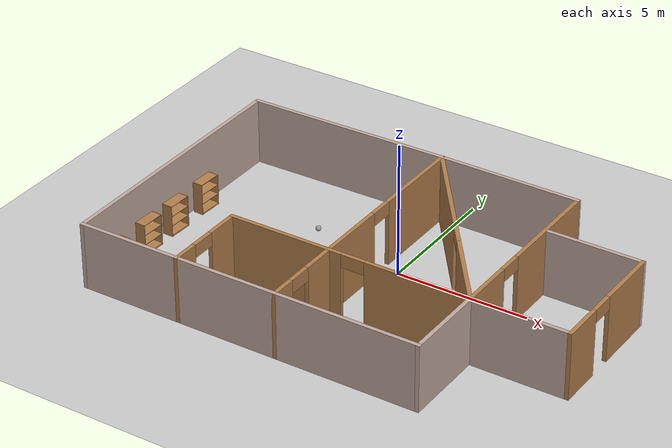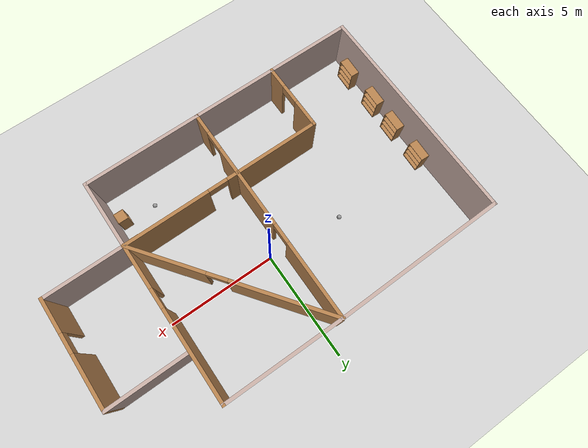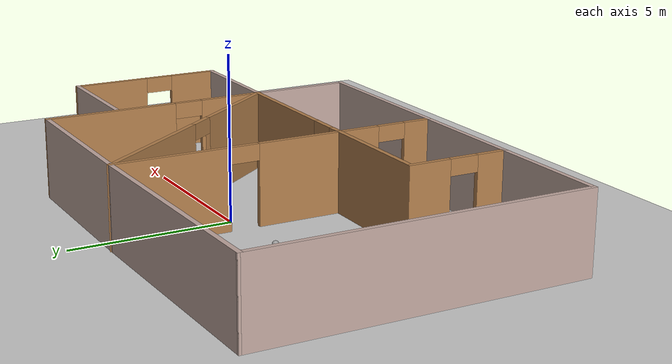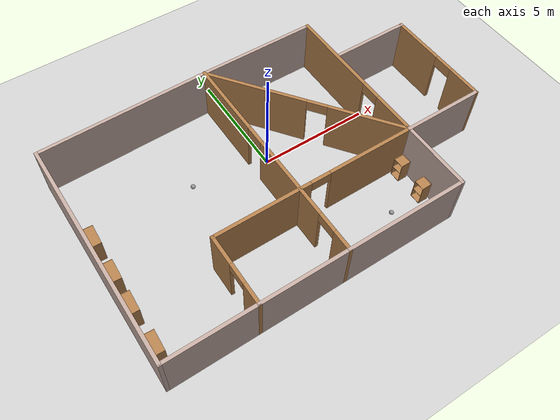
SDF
<sdf version="1.6">
 <world name="default">
  <light name="sun" type="directional">
   <pose>0 0 10 0 -0 0</pose>
   <diffuse>0.8 0.8 0.8 1</diffuse>
   <specular>0.2 0.2 0.2 1</specular>
   <attenuation>
    <range>1000</range>
    <constant>0.9</constant>
    <linear>0.01</linear>
    <quadratic>0.001</quadratic>
   </attenuation>
   <direction>-0.5 0.1 -0.9</direction>
  </light>
  <model name="ground_plane">
   <static>1</static>
   <link name="link">
    <collision name="collision">
     <geometry><plane><normal>0 0 1</normal><size>100 100</size></plane></geometry>
     <surface>
      <contact><collide_bitmask>65535</collide_bitmask></contact>
      <friction><ode><mu>100</mu><mu2>50</mu2></ode></friction>
     </surface>
    </collision>
    <visual name="visual">
     <cast_shadows>0</cast_shadows>
     <geometry><plane><normal>0 0 1</normal><size>100 100</size></plane></geometry>
     <material>
      <script><uri>file://media/materials/scripts/gazebo.material</uri><name>Gazebo/Grey</name></script>
     </material>
    </visual>
   </link>
  </model>
  <gravity>0 0 -9.8</gravity>
  <magnetic_field>6e-06 2.3e-05 -4.2e-05</magnetic_field>
  <atmosphere type="adiabatic"/>
  <physics name="default_physics" default="0" type="ode">
   <max_step_size>0.001</max_step_size>
   <real_time_factor>1</real_time_factor>
   <real_time_update_rate>1000</real_time_update_rate>
  </physics>
  <scene><ambient>0.4 0.4 0.4 1</ambient><background>0.7 0.7 0.7 1</background><shadows>1</shadows></scene>
  <spherical_coordinates>
   <surface_model>EARTH_WGS84</surface_model>
   <latitude_deg>0</latitude_deg>
   <longitude_deg>0</longitude_deg>
   <elevation>0</elevation>
   <heading_deg>0</heading_deg>
  </spherical_coordinates>
  <model name="Project2Buidling">
   <pose>-0.03368 -1.22093 0 0 -0 0</pose>
   <link name="Wall_0">
    <collision name="Wall_0_Collision">
     <geometry><box><size>10.25 0.15 2.5</size></box></geometry>
     <pose>0 0 1.25 0 -0 0</pose>
    </collision>
    <visual name="Wall_0_Visual">
     <pose>0 0 1.25 0 -0 0</pose>
     <geometry><box><size>10.25 0.15 2.5</size></box></geometry>
     <material>
      <script><uri>file://media/materials/scripts/gazebo.material</uri><name>Gazebo/Grey</name></script>
      <ambient>0.760784 0.662745 0.627451 1</ambient>
     </material>
     <meta><layer>0</layer></meta>
    </visual>
    <pose>-8.32441 -0.076505 0 0 0 -1.5708</pose>
   </link>
   <link name="Wall_1">
    <collision name="Wall_1_Collision">
     <geometry><box><size>4 0.15 2.5</size></box></geometry>
     <pose>0 0 1.25 0 -0 0</pose>
    </collision>
    <visual name="Wall_1_Visual">
     <pose>0 0 1.25 0 -0 0</pose>
     <geometry><box><size>4 0.15 2.5</size></box></geometry>
     <material>
      <script><uri>file://media/materials/scripts/gazebo.material</uri><name>Gazebo/Grey</name></script>
      <ambient>0.760784 0.662745 0.627451 1</ambient>
     </material>
     <meta><layer>0</layer></meta>
    </visual>
    <pose>-6.39941 -5.1265 0 0 -0 0</pose>
   </link>
   <link name="Wall_10">
    <pose>-0.624406 1.535 0 0 -0 1.5708</pose>
    <visual name="Wall_10_Visual_0">
     <pose>-2.26805 0 1.25 0 -0 0</pose>
     <geometry><box><size>2.7369 0.15 2.5</size></box></geometry>
     <material>
      <script><uri>file://media/materials/scripts/gazebo.material</uri><name>Gazebo/Wood</name></script>
      <ambient>1 1 1 1</ambient>
     </material>
     <meta><layer>0</layer></meta>
    </visual>
    <collision name="Wall_10_Collision_0">
     <geometry><box><size>2.7369 0.15 2.5</size></box></geometry>
     <pose>-2.26805 0 1.25 0 -0 0</pose>
    </collision>
    <visual name="Wall_10_Visual_1">
     <pose>1.81845 0 1.25 0 -0 0</pose>
     <geometry><box><size>3.6361 0.15 2.5</size></box></geometry>
     <material>
      <script><uri>file://media/materials/scripts/gazebo.material</uri><name>Gazebo/Wood</name></script>
      <ambient>1 1 1 1</ambient>
     </material>
     <meta><layer>0</layer></meta>
    </visual>
    <collision name="Wall_10_Collision_1">
     <geometry><box><size>3.6361 0.15 2.5</size></box></geometry>
     <pose>1.81845 0 1.25 0 -0 0</pose>
    </collision>
    <visual name="Wall_10_Visual_2">
     <pose>-0.449599 0 2.25 0 -0 0</pose>
     <geometry><box><size>0.9 0.15 0.5</size></box></geometry>
     <material>
      <script><uri>file://media/materials/scripts/gazebo.material</uri><name>Gazebo/Wood</name></script>
      <ambient>1 1 1 1</ambient>
     </material>
     <meta><layer>0</layer></meta>
    </visual>
    <collision name="Wall_10_Collision_2">
     <geometry><box><size>0.9 0.15 0.5</size></box></geometry>
     <pose>-0.449599 0 2.25 0 -0 0</pose>
    </collision>
   </link>
   <link name="Wall_13">
    <collision name="Wall_13_Collision">
     <geometry><box><size>7.85098 0.15 2.5</size></box></geometry>
     <pose>0 0 1.25 0 -0 0</pose>
    </collision>
    <visual name="Wall_13_Visual">
     <pose>0 0 1.25 0 -0 0</pose>
     <geometry><box><size>7.85098 0.15 2.5</size></box></geometry>
     <material>
      <script><uri>file://media/materials/scripts/gazebo.material</uri><name>Gazebo/Grey</name></script>
      <ambient>0.760784 0.662745 0.627451 1</ambient>
     </material>
     <meta><layer>0</layer></meta>
    </visual>
    <pose>-4.47441 5.035 0 0 -0 0.015973</pose>
   </link>
   <link name="Wall_15">
    <pose>4.72559 1.5235 0 0 -0 1.5708</pose>
    <visual name="Wall_15_Visual_0">
     <pose>-2.57137 0 1.25 0 -0 0</pose>
     <geometry><box><size>2.10726 0.15 2.5</size></box></geometry>
     <material>
      <script><uri>file://media/materials/scripts/gazebo.material</uri><name>Gazebo/Wood</name></script>
      <ambient>0.760784 0.662745 0.627451 1</ambient>
     </material>
     <meta><layer>0</layer></meta>
    </visual>
    <collision name="Wall_15_Collision_0">
     <geometry><box><size>2.10726 0.15 2.5</size></box></geometry>
     <pose>-2.57137 0 1.25 0 -0 0</pose>
    </collision>
    <visual name="Wall_15_Visual_1">
     <pose>1.50363 0 1.25 0 -0 0</pose>
     <geometry><box><size>4.24274 0.15 2.5</size></box></geometry>
     <material>
      <script><uri>file://media/materials/scripts/gazebo.material</uri><name>Gazebo/Wood</name></script>
      <ambient>0.760784 0.662745 0.627451 1</ambient>
     </material>
     <meta><layer>0</layer></meta>
    </visual>
    <collision name="Wall_15_Collision_1">
     <geometry><box><size>4.24274 0.15 2.5</size></box></geometry>
     <pose>1.50363 0 1.25 0 -0 0</pose>
    </collision>
    <visual name="Wall_15_Visual_2">
     <pose>-1.06774 0 2.25 0 -0 0</pose>
     <geometry><box><size>0.9 0.15 0.5</size></box></geometry>
     <material>
      <script><uri>file://media/materials/scripts/gazebo.material</uri><name>Gazebo/Wood</name></script>
      <ambient>0.760784 0.662745 0.627451 1</ambient>
     </material>
     <meta><layer>0</layer></meta>
    </visual>
    <collision name="Wall_15_Collision_2">
     <geometry><box><size>0.9 0.15 0.5</size></box></geometry>
     <pose>-1.06774 0 2.25 0 -0 0</pose>
    </collision>
   </link>
   <link name="Wall_16">
    <collision name="Wall_16_Collision">
     <geometry><box><size>5.50005 0.15 2.5</size></box></geometry>
     <pose>0 0 1.25 0 -0 0</pose>
    </collision>
    <visual name="Wall_16_Visual">
     <pose>0 0 1.25 0 -0 0</pose>
     <geometry><box><size>5.50005 0.15 2.5</size></box></geometry>
     <material>
      <script><uri>file://media/materials/scripts/gazebo.material</uri><name>Gazebo/Grey</name></script>
      <ambient>0.760784 0.662745 0.627451 1</ambient>
     </material>
     <meta><layer>0</layer></meta>
    </visual>
    <pose>2.05059 5.085 0 0 -0 3.13729</pose>
   </link>
   <link name="Wall_17">
    <pose>2.05059 1.535 0 0 0 -0.926599</pose>
    <visual name="Wall_17_Visual_0">
     <pose>-2.19887 0 1.25 0 -0 0</pose>
     <geometry><box><size>4.66066 0.15 2.5</size></box></geometry>
     <material>
      <script><uri>file://media/materials/scripts/gazebo.material</uri><name>Gazebo/Wood</name></script>
      <ambient>1 1 1 1</ambient>
     </material>
     <meta><layer>0</layer></meta>
    </visual>
    <collision name="Wall_17_Collision_0">
     <geometry><box><size>4.66066 0.15 2.5</size></box></geometry>
     <pose>-2.19887 0 1.25 0 -0 0</pose>
    </collision>
    <visual name="Wall_17_Visual_1">
     <pose>2.78033 0 1.25 0 -0 0</pose>
     <geometry><box><size>3.49774 0.15 2.5</size></box></geometry>
     <material>
      <script><uri>file://media/materials/scripts/gazebo.material</uri><name>Gazebo/Wood</name></script>
      <ambient>1 1 1 1</ambient>
     </material>
     <meta><layer>0</layer></meta>
    </visual>
    <collision name="Wall_17_Collision_1">
     <geometry><box><size>3.49774 0.15 2.5</size></box></geometry>
     <pose>2.78033 0 1.25 0 -0 0</pose>
    </collision>
    <visual name="Wall_17_Visual_2">
     <pose>0.581463 0 2.25 0 -0 0</pose>
     <geometry><box><size>0.9 0.15 0.5</size></box></geometry>
     <material>
      <script><uri>file://media/materials/scripts/gazebo.material</uri><name>Gazebo/Wood</name></script>
      <ambient>1 1 1 1</ambient>
     </material>
     <meta><layer>0</layer></meta>
    </visual>
    <collision name="Wall_17_Collision_2">
     <geometry><box><size>0.9 0.15 0.5</size></box></geometry>
     <pose>0.581463 0 2.25 0 -0 0</pose>
    </collision>
   </link>
   <link name="Wall_18">
    <collision name="Wall_18_Collision">
     <geometry><box><size>3.75 0.15 2.5</size></box></geometry>
     <pose>0 0 1.25 0 -0 0</pose>
    </collision>
    <visual name="Wall_18_Visual">
     <pose>0 0 1.25 0 -0 0</pose>
     <geometry><box><size>3.75 0.15 2.5</size></box></geometry>
     <material>
      <script><uri>file://media/materials/scripts/gazebo.material</uri><name>Gazebo/Grey</name></script>
      <ambient>0.760784 0.662745 0.627451 1</ambient>
     </material>
     <meta><layer>0</layer></meta>
    </visual>
    <pose>6.52559 -2.0265 0 0 -0 0</pose>
   </link>
   <link name="Wall_19">
    <pose>8.32559 0.398495 0 0 -0 1.5708</pose>
    <visual name="Wall_19_Visual_0">
     <pose>-1.69123 0 1.25 0 -0 0</pose>
     <geometry><box><size>1.61754 0.15 2.5</size></box></geometry>
     <material>
      <script><uri>file://media/materials/scripts/gazebo.material</uri><name>Gazebo/Wood</name></script>
      <ambient>0.760784 0.662745 0.627451 1</ambient>
     </material>
     <meta><layer>0</layer></meta>
    </visual>
    <collision name="Wall_19_Collision_0">
     <geometry><box><size>1.61754 0.15 2.5</size></box></geometry>
     <pose>-1.69123 0 1.25 0 -0 0</pose>
    </collision>
    <visual name="Wall_19_Visual_1">
     <pose>1.25877 0 1.25 0 -0 0</pose>
     <geometry><box><size>2.48246 0.15 2.5</size></box></geometry>
     <material>
      <script><uri>file://media/materials/scripts/gazebo.material</uri><name>Gazebo/Wood</name></script>
      <ambient>0.760784 0.662745 0.627451 1</ambient>
     </material>
     <meta><layer>0</layer></meta>
    </visual>
    <collision name="Wall_19_Collision_1">
     <geometry><box><size>2.48246 0.15 2.5</size></box></geometry>
     <pose>1.25877 0 1.25 0 -0 0</pose>
    </collision>
    <visual name="Wall_19_Visual_2">
     <pose>-0.432463 0 2.25 0 -0 0</pose>
     <geometry><box><size>0.9 0.15 0.5</size></box></geometry>
     <material>
      <script><uri>file://media/materials/scripts/gazebo.material</uri><name>Gazebo/Wood</name></script>
      <ambient>0.760784 0.662745 0.627451 1</ambient>
     </material>
     <meta><layer>0</layer></meta>
    </visual>
    <collision name="Wall_19_Collision_2">
     <geometry><box><size>0.9 0.15 0.5</size></box></geometry>
     <pose>-0.432463 0 2.25 0 -0 0</pose>
    </collision>
   </link>
   <link name="Wall_2">
    <pose>-4.47441 -3.57651 0 0 -0 1.5708</pose>
    <visual name="Wall_2_Visual_0">
     <pose>-1.12018 0 1.25 0 -0 0</pose>
     <geometry><box><size>1.00964 0.15 2.5</size></box></geometry>
     <material>
      <script><uri>file://media/materials/scripts/gazebo.material</uri><name>Gazebo/Wood</name></script>
      <ambient>1 1 1 1</ambient>
     </material>
     <meta><layer>0</layer></meta>
    </visual>
    <collision name="Wall_2_Collision_0">
     <geometry><box><size>1.00964 0.15 2.5</size></box></geometry>
     <pose>-1.12018 0 1.25 0 -0 0</pose>
    </collision>
    <visual name="Wall_2_Visual_1">
     <pose>0.954822 0 1.25 0 -0 0</pose>
     <geometry><box><size>1.34036 0.15 2.5</size></box></geometry>
     <material>
      <script><uri>file://media/materials/scripts/gazebo.material</uri><name>Gazebo/Wood</name></script>
      <ambient>1 1 1 1</ambient>
     </material>
     <meta><layer>0</layer></meta>
    </visual>
    <collision name="Wall_2_Collision_1">
     <geometry><box><size>1.34036 0.15 2.5</size></box></geometry>
     <pose>0.954822 0 1.25 0 -0 0</pose>
    </collision>
    <visual name="Wall_2_Visual_2">
     <pose>-0.165357 0 2.25 0 -0 0</pose>
     <geometry><box><size>0.9 0.15 0.5</size></box></geometry>
     <material>
      <script><uri>file://media/materials/scripts/gazebo.material</uri><name>Gazebo/Wood</name></script>
      <ambient>1 1 1 1</ambient>
     </material>
     <meta><layer>0</layer></meta>
    </visual>
    <collision name="Wall_2_Collision_2">
     <geometry><box><size>0.9 0.15 0.5</size></box></geometry>
     <pose>-0.165357 0 2.25 0 -0 0</pose>
    </collision>
   </link>
   <link name="Wall_20">
    <collision name="Wall_20_Collision">
     <geometry><box><size>3.75 0.15 2.5</size></box></geometry>
     <pose>0 0 1.25 0 -0 0</pose>
    </collision>
    <visual name="Wall_20_Visual">
     <pose>0 0 1.25 0 -0 0</pose>
     <geometry><box><size>3.75 0.15 2.5</size></box></geometry>
     <material>
      <script><uri>file://media/materials/scripts/gazebo.material</uri><name>Gazebo/Grey</name></script>
      <ambient>0.760784 0.662745 0.627451 1</ambient>
     </material>
     <meta><layer>0</layer></meta>
    </visual>
    <pose>6.52559 2.82349 0 0 -0 3.14159</pose>
   </link>
   <link name="Wall_3">
    <collision name="Wall_3_Collision">
     <geometry><box><size>4 0.15 2.5</size></box></geometry>
     <pose>0 0 1.25 0 -0 0</pose>
    </collision>
    <visual name="Wall_3_Visual">
     <pose>0 0 1.25 0 -0 0</pose>
     <geometry><box><size>4 0.15 2.5</size></box></geometry>
     <material>
      <script><uri>file://media/materials/scripts/gazebo.material</uri><name>Gazebo/Wood</name></script>
      <ambient>1 1 1 1</ambient>
     </material>
     <meta><layer>0</layer></meta>
    </visual>
    <pose>-2.54941 -2.0265 0 0 -0 0</pose>
   </link>
   <link name="Wall_4">
    <pose>-0.624406 -3.57651 0 0 0 -1.5708</pose>
    <visual name="Wall_4_Visual_0">
     <pose>-0.937332 0 1.25 0 -0 0</pose>
     <geometry><box><size>1.37534 0.15 2.5</size></box></geometry>
     <material>
      <script><uri>file://media/materials/scripts/gazebo.material</uri><name>Gazebo/Wood</name></script>
      <ambient>1 1 1 1</ambient>
     </material>
     <meta><layer>0</layer></meta>
    </visual>
    <collision name="Wall_4_Collision_0">
     <geometry><box><size>1.37534 0.15 2.5</size></box></geometry>
     <pose>-0.937332 0 1.25 0 -0 0</pose>
    </collision>
    <visual name="Wall_4_Visual_1">
     <pose>1.13767 0 1.25 0 -0 0</pose>
     <geometry><box><size>0.974663 0.15 2.5</size></box></geometry>
     <material>
      <script><uri>file://media/materials/scripts/gazebo.material</uri><name>Gazebo/Wood</name></script>
      <ambient>1 1 1 1</ambient>
     </material>
     <meta><layer>0</layer></meta>
    </visual>
    <collision name="Wall_4_Collision_1">
     <geometry><box><size>0.974663 0.15 2.5</size></box></geometry>
     <pose>1.13767 0 1.25 0 -0 0</pose>
    </collision>
    <visual name="Wall_4_Visual_2">
     <pose>0.200337 0 2.25 0 -0 0</pose>
     <geometry><box><size>0.9 0.15 0.5</size></box></geometry>
     <material>
      <script><uri>file://media/materials/scripts/gazebo.material</uri><name>Gazebo/Wood</name></script>
      <ambient>1 1 1 1</ambient>
     </material>
     <meta><layer>0</layer></meta>
    </visual>
    <collision name="Wall_4_Collision_2">
     <geometry><box><size>0.9 0.15 0.5</size></box></geometry>
     <pose>0.200337 0 2.25 0 -0 0</pose>
    </collision>
   </link>
   <link name="Wall_5">
    <collision name="Wall_5_Collision">
     <geometry><box><size>4 0.15 2.5</size></box></geometry>
     <pose>0 0 1.25 0 -0 0</pose>
    </collision>
    <visual name="Wall_5_Visual">
     <pose>0 0 1.25 0 -0 0</pose>
     <geometry><box><size>4 0.15 2.5</size></box></geometry>
     <material>
      <script><uri>file://media/materials/scripts/gazebo.material</uri><name>Gazebo/Grey</name></script>
      <ambient>0.760784 0.662745 0.627451 1</ambient>
     </material>
     <meta><layer>0</layer></meta>
    </visual>
    <pose>-2.54941 -5.1265 0 0 -0 3.14159</pose>
   </link>
   <link name="Wall_7">
    <collision name="Wall_7_Collision">
     <geometry><box><size>5.5 0.15 2.5</size></box></geometry>
     <pose>0 0 1.25 0 -0 0</pose>
    </collision>
    <visual name="Wall_7_Visual">
     <pose>0 0 1.25 0 -0 0</pose>
     <geometry><box><size>5.5 0.15 2.5</size></box></geometry>
     <material>
      <script><uri>file://media/materials/scripts/gazebo.material</uri><name>Gazebo/Grey</name></script>
      <ambient>0.760784 0.662745 0.627451 1</ambient>
     </material>
     <meta><layer>0</layer></meta>
    </visual>
    <pose>2.05059 -5.1265 0 0 -0 0</pose>
   </link>
   <link name="Wall_8">
    <collision name="Wall_8_Collision">
     <geometry><box><size>3.25 0.15 2.5</size></box></geometry>
     <pose>0 0 1.25 0 -0 0</pose>
    </collision>
    <visual name="Wall_8_Visual">
     <pose>0 0 1.25 0 -0 0</pose>
     <geometry><box><size>3.25 0.15 2.5</size></box></geometry>
     <material>
      <script><uri>file://media/materials/scripts/gazebo.material</uri><name>Gazebo/Grey</name></script>
      <ambient>0.760784 0.662745 0.627451 1</ambient>
     </material>
     <meta><layer>0</layer></meta>
    </visual>
    <pose>4.72559 -3.57651 0 0 -0 1.5708</pose>
   </link>
   <link name="Wall_9">
    <pose>2.05059 -2.0265 0 0 -0 3.14159</pose>
    <visual name="Wall_9_Visual_0">
     <pose>-0.741198 0 1.25 0 -0 0</pose>
     <geometry><box><size>4.0176 0.15 2.5</size></box></geometry>
     <material>
      <script><uri>file://media/materials/scripts/gazebo.material</uri><name>Gazebo/Wood</name></script>
      <ambient>1 1 1 1</ambient>
     </material>
     <meta><layer>0</layer></meta>
    </visual>
    <collision name="Wall_9_Collision_0">
     <geometry><box><size>4.0176 0.15 2.5</size></box></geometry>
     <pose>-0.741198 0 1.25 0 -0 0</pose>
    </collision>
    <visual name="Wall_9_Visual_1">
     <pose>2.4588 0 1.25 0 -0 0</pose>
     <geometry><box><size>0.582395 0.15 2.5</size></box></geometry>
     <material>
      <script><uri>file://media/materials/scripts/gazebo.material</uri><name>Gazebo/Wood</name></script>
      <ambient>1 1 1 1</ambient>
     </material>
     <meta><layer>0</layer></meta>
    </visual>
    <collision name="Wall_9_Collision_1">
     <geometry><box><size>0.582395 0.15 2.5</size></box></geometry>
     <pose>2.4588 0 1.25 0 -0 0</pose>
    </collision>
    <visual name="Wall_9_Visual_2">
     <pose>1.71761 0 2.25 0 -0 0</pose>
     <geometry><box><size>0.9 0.15 0.5</size></box></geometry>
     <material>
      <script><uri>file://media/materials/scripts/gazebo.material</uri><name>Gazebo/Wood</name></script>
      <ambient>1 1 1 1</ambient>
     </material>
     <meta><layer>0</layer></meta>
    </visual>
    <collision name="Wall_9_Collision_2">
     <geometry><box><size>0.9 0.15 0.5</size></box></geometry>
     <pose>1.71761 0 2.25 0 -0 0</pose>
    </collision>
   </link>
   <static>1</static>
  </model>
  <model name="bookshelf_clone">
   <static>1</static>
   <link name="link">
    <inertial><mass>1</mass></inertial>
    <collision name="back">
     <pose>0 0.005 0.6 0 -0 0</pose>
     <geometry><box><size>0.9 0.01 1.2</size></box></geometry>
    </collision>
    <visual name="visual1">
     <pose>0 0.005 0.6 0 -0 0</pose>
     <geometry><box><size>0.9 0.01 1.2</size></box></geometry>
     <material>
      <script><uri>file://media/materials/scripts/gazebo.material</uri><name>Gazebo/Wood</name></script>
     </material>
    </visual>
    <collision name="left_side">
     <pose>0.45 -0.195 0.6 0 -0 0</pose>
     <geometry><box><size>0.02 0.4 1.2</size></box></geometry>
    </collision>
    <visual name="visual2">
     <pose>0.45 -0.195 0.6 0 -0 0</pose>
     <geometry><box><size>0.02 0.4 1.2</size></box></geometry>
     <material>
      <script><uri>file://media/materials/scripts/gazebo.material</uri><name>Gazebo/Wood</name></script>
     </material>
    </visual>
    <collision name="right_side">
     <pose>-0.45 -0.195 0.6 0 -0 0</pose>
     <geometry><box><size>0.02 0.4 1.2</size></box></geometry>
    </collision>
    <visual name="visual3">
     <pose>-0.45 -0.195 0.6 0 -0 0</pose>
     <geometry><box><size>0.02 0.4 1.2</size></box></geometry>
     <material>
      <script><uri>file://media/materials/scripts/gazebo.material</uri><name>Gazebo/Wood</name></script>
     </material>
    </visual>
    <collision name="bottom">
     <pose>0 -0.195 0.03 0 -0 0</pose>
     <geometry><box><size>0.88 0.4 0.06</size></box></geometry>
    </collision>
    <visual name="visual4">
     <pose>0 -0.195 0.03 0 -0 0</pose>
     <geometry><box><size>0.88 0.4 0.06</size></box></geometry>
     <material>
      <script><uri>file://media/materials/scripts/gazebo.material</uri><name>Gazebo/Wood</name></script>
     </material>
    </visual>
    <collision name="top">
     <pose>0 -0.195 1.19 0 -0 0</pose>
     <geometry><box><size>0.88 0.4 0.02</size></box></geometry>
    </collision>
    <visual name="visual5">
     <pose>0 -0.195 1.19 0 -0 0</pose>
     <geometry><box><size>0.88 0.4 0.02</size></box></geometry>
     <material>
      <script><uri>file://media/materials/scripts/gazebo.material</uri><name>Gazebo/Wood</name></script>
     </material>
    </visual>
    <collision name="low_shelf">
     <pose>0 -0.195 0.43 0 -0 0</pose>
     <geometry><box><size>0.88 0.4 0.02</size></box></geometry>
    </collision>
    <visual name="visual6">
     <pose>0 -0.195 0.43 0 -0 0</pose>
     <geometry><box><size>0.88 0.4 0.02</size></box></geometry>
     <material>
      <script><uri>file://media/materials/scripts/gazebo.material</uri><name>Gazebo/Wood</name></script>
     </material>
    </visual>
    <collision name="high_shelf">
     <pose>0 -0.195 0.8 0 -0 0</pose>
     <geometry><box><size>0.88 0.4 0.02</size></box></geometry>
    </collision>
    <visual name="visual7">
     <pose>0 -0.195 0.8 0 -0 0</pose>
     <geometry><box><size>0.88 0.4 0.02</size></box></geometry>
     <material>
      <script><uri>file://media/materials/scripts/gazebo.material</uri><name>Gazebo/Wood</name></script>
     </material>
    </visual>
   </link>
   <pose>-8.22123 -1.75825 0 0 -0 1.52865</pose>
  </model>
  <model name="bookshelf_clone_0">
   <static>1</static>
   <link name="link">
    <inertial><mass>1</mass></inertial>
    <collision name="back">
     <pose>0 0.005 0.6 0 -0 0</pose>
     <geometry><box><size>0.9 0.01 1.2</size></box></geometry>
    </collision>
    <visual name="visual1">
     <pose>0 0.005 0.6 0 -0 0</pose>
     <geometry><box><size>0.9 0.01 1.2</size></box></geometry>
     <material>
      <script><uri>file://media/materials/scripts/gazebo.material</uri><name>Gazebo/Wood</name></script>
     </material>
    </visual>
    <collision name="left_side">
     <pose>0.45 -0.195 0.6 0 -0 0</pose>
     <geometry><box><size>0.02 0.4 1.2</size></box></geometry>
    </collision>
    <visual name="visual2">
     <pose>0.45 -0.195 0.6 0 -0 0</pose>
     <geometry><box><size>0.02 0.4 1.2</size></box></geometry>
     <material>
      <script><uri>file://media/materials/scripts/gazebo.material</uri><name>Gazebo/Wood</name></script>
     </material>
    </visual>
    <collision name="right_side">
     <pose>-0.45 -0.195 0.6 0 -0 0</pose>
     <geometry><box><size>0.02 0.4 1.2</size></box></geometry>
    </collision>
    <visual name="visual3">
     <pose>-0.45 -0.195 0.6 0 -0 0</pose>
     <geometry><box><size>0.02 0.4 1.2</size></box></geometry>
     <material>
      <script><uri>file://media/materials/scripts/gazebo.material</uri><name>Gazebo/Wood</name></script>
     </material>
    </visual>
    <collision name="bottom">
     <pose>0 -0.195 0.03 0 -0 0</pose>
     <geometry><box><size>0.88 0.4 0.06</size></box></geometry>
    </collision>
    <visual name="visual4">
     <pose>0 -0.195 0.03 0 -0 0</pose>
     <geometry><box><size>0.88 0.4 0.06</size></box></geometry>
     <material>
      <script><uri>file://media/materials/scripts/gazebo.material</uri><name>Gazebo/Wood</name></script>
     </material>
    </visual>
    <collision name="top">
     <pose>0 -0.195 1.19 0 -0 0</pose>
     <geometry><box><size>0.88 0.4 0.02</size></box></geometry>
    </collision>
    <visual name="visual5">
     <pose>0 -0.195 1.19 0 -0 0</pose>
     <geometry><box><size>0.88 0.4 0.02</size></box></geometry>
     <material>
      <script><uri>file://media/materials/scripts/gazebo.material</uri><name>Gazebo/Wood</name></script>
     </material>
    </visual>
    <collision name="low_shelf">
     <pose>0 -0.195 0.43 0 -0 0</pose>
     <geometry><box><size>0.88 0.4 0.02</size></box></geometry>
    </collision>
    <visual name="visual6">
     <pose>0 -0.195 0.43 0 -0 0</pose>
     <geometry><box><size>0.88 0.4 0.02</size></box></geometry>
     <material>
      <script><uri>file://media/materials/scripts/gazebo.material</uri><name>Gazebo/Wood</name></script>
     </material>
    </visual>
    <collision name="high_shelf">
     <pose>0 -0.195 0.8 0 -0 0</pose>
     <geometry><box><size>0.88 0.4 0.02</size></box></geometry>
    </collision>
    <visual name="visual7">
     <pose>0 -0.195 0.8 0 -0 0</pose>
     <geometry><box><size>0.88 0.4 0.02</size></box></geometry>
     <material>
      <script><uri>file://media/materials/scripts/gazebo.material</uri><name>Gazebo/Wood</name></script>
     </material>
    </visual>
   </link>
   <pose>-8.25457 -3.24691 0 0 -0 1.52865</pose>
  </model>
  <model name="bookshelf_clone_1">
   <static>1</static>
   <link name="link">
    <inertial><mass>1</mass></inertial>
    <collision name="back">
     <pose>0 0.005 0.6 0 -0 0</pose>
     <geometry><box><size>0.9 0.01 1.2</size></box></geometry>
    </collision>
    <visual name="visual1">
     <pose>0 0.005 0.6 0 -0 0</pose>
     <geometry><box><size>0.9 0.01 1.2</size></box></geometry>
     <material>
      <script><uri>file://media/materials/scripts/gazebo.material</uri><name>Gazebo/Wood</name></script>
     </material>
    </visual>
    <collision name="left_side">
     <pose>0.45 -0.195 0.6 0 -0 0</pose>
     <geometry><box><size>0.02 0.4 1.2</size></box></geometry>
    </collision>
    <visual name="visual2">
     <pose>0.45 -0.195 0.6 0 -0 0</pose>
     <geometry><box><size>0.02 0.4 1.2</size></box></geometry>
     <material>
      <script><uri>file://media/materials/scripts/gazebo.material</uri><name>Gazebo/Wood</name></script>
     </material>
    </visual>
    <collision name="right_side">
     <pose>-0.45 -0.195 0.6 0 -0 0</pose>
     <geometry><box><size>0.02 0.4 1.2</size></box></geometry>
    </collision>
    <visual name="visual3">
     <pose>-0.45 -0.195 0.6 0 -0 0</pose>
     <geometry><box><size>0.02 0.4 1.2</size></box></geometry>
     <material>
      <script><uri>file://media/materials/scripts/gazebo.material</uri><name>Gazebo/Wood</name></script>
     </material>
    </visual>
    <collision name="bottom">
     <pose>0 -0.195 0.03 0 -0 0</pose>
     <geometry><box><size>0.88 0.4 0.06</size></box></geometry>
    </collision>
    <visual name="visual4">
     <pose>0 -0.195 0.03 0 -0 0</pose>
     <geometry><box><size>0.88 0.4 0.06</size></box></geometry>
     <material>
      <script><uri>file://media/materials/scripts/gazebo.material</uri><name>Gazebo/Wood</name></script>
     </material>
    </visual>
    <collision name="top">
     <pose>0 -0.195 1.19 0 -0 0</pose>
     <geometry><box><size>0.88 0.4 0.02</size></box></geometry>
    </collision>
    <visual name="visual5">
     <pose>0 -0.195 1.19 0 -0 0</pose>
     <geometry><box><size>0.88 0.4 0.02</size></box></geometry>
     <material>
      <script><uri>file://media/materials/scripts/gazebo.material</uri><name>Gazebo/Wood</name></script>
     </material>
    </visual>
    <collision name="low_shelf">
     <pose>0 -0.195 0.43 0 -0 0</pose>
     <geometry><box><size>0.88 0.4 0.02</size></box></geometry>
    </collision>
    <visual name="visual6">
     <pose>0 -0.195 0.43 0 -0 0</pose>
     <geometry><box><size>0.88 0.4 0.02</size></box></geometry>
     <material>
      <script><uri>file://media/materials/scripts/gazebo.material</uri><name>Gazebo/Wood</name></script>
     </material>
    </visual>
    <collision name="high_shelf">
     <pose>0 -0.195 0.8 0 -0 0</pose>
     <geometry><box><size>0.88 0.4 0.02</size></box></geometry>
    </collision>
    <visual name="visual7">
     <pose>0 -0.195 0.8 0 -0 0</pose>
     <geometry><box><size>0.88 0.4 0.02</size></box></geometry>
     <material>
      <script><uri>file://media/materials/scripts/gazebo.material</uri><name>Gazebo/Wood</name></script>
     </material>
    </visual>
   </link>
   <pose>-8.21584 -5.06674 0 0 -0 1.52865</pose>
  </model>
  <model name="bookshelf_clone_clone">
   <static>1</static>
   <link name="link">
    <inertial><mass>1</mass></inertial>
    <collision name="back">
     <pose>0 0.005 0.6 0 -0 0</pose>
     <geometry><box><size>0.9 0.01 1.2</size></box></geometry>
    </collision>
    <visual name="visual1">
     <pose>0 0.005 0.6 0 -0 0</pose>
     <geometry><box><size>0.9 0.01 1.2</size></box></geometry>
     <material>
      <script><uri>file://media/materials/scripts/gazebo.material</uri><name>Gazebo/Wood</name></script>
     </material>
    </visual>
    <collision name="left_side">
     <pose>0.45 -0.195 0.6 0 -0 0</pose>
     <geometry><box><size>0.02 0.4 1.2</size></box></geometry>
    </collision>
    <visual name="visual2">
     <pose>0.45 -0.195 0.6 0 -0 0</pose>
     <geometry><box><size>0.02 0.4 1.2</size></box></geometry>
     <material>
      <script><uri>file://media/materials/scripts/gazebo.material</uri><name>Gazebo/Wood</name></script>
     </material>
    </visual>
    <collision name="right_side">
     <pose>-0.45 -0.195 0.6 0 -0 0</pose>
     <geometry><box><size>0.02 0.4 1.2</size></box></geometry>
    </collision>
    <visual name="visual3">
     <pose>-0.45 -0.195 0.6 0 -0 0</pose>
     <geometry><box><size>0.02 0.4 1.2</size></box></geometry>
     <material>
      <script><uri>file://media/materials/scripts/gazebo.material</uri><name>Gazebo/Wood</name></script>
     </material>
    </visual>
    <collision name="bottom">
     <pose>0 -0.195 0.03 0 -0 0</pose>
     <geometry><box><size>0.88 0.4 0.06</size></box></geometry>
    </collision>
    <visual name="visual4">
     <pose>0 -0.195 0.03 0 -0 0</pose>
     <geometry><box><size>0.88 0.4 0.06</size></box></geometry>
     <material>
      <script><uri>file://media/materials/scripts/gazebo.material</uri><name>Gazebo/Wood</name></script>
     </material>
    </visual>
    <collision name="top">
     <pose>0 -0.195 1.19 0 -0 0</pose>
     <geometry><box><size>0.88 0.4 0.02</size></box></geometry>
    </collision>
    <visual name="visual5">
     <pose>0 -0.195 1.19 0 -0 0</pose>
     <geometry><box><size>0.88 0.4 0.02</size></box></geometry>
     <material>
      <script><uri>file://media/materials/scripts/gazebo.material</uri><name>Gazebo/Wood</name></script>
     </material>
    </visual>
    <collision name="low_shelf">
     <pose>0 -0.195 0.43 0 -0 0</pose>
     <geometry><box><size>0.88 0.4 0.02</size></box></geometry>
    </collision>
    <visual name="visual6">
     <pose>0 -0.195 0.43 0 -0 0</pose>
     <geometry><box><size>0.88 0.4 0.02</size></box></geometry>
     <material>
      <script><uri>file://media/materials/scripts/gazebo.material</uri><name>Gazebo/Wood</name></script>
     </material>
    </visual>
    <collision name="high_shelf">
     <pose>0 -0.195 0.8 0 -0 0</pose>
     <geometry><box><size>0.88 0.4 0.02</size></box></geometry>
    </collision>
    <visual name="visual7">
     <pose>0 -0.195 0.8 0 -0 0</pose>
     <geometry><box><size>0.88 0.4 0.02</size></box></geometry>
     <material>
      <script><uri>file://media/materials/scripts/gazebo.material</uri><name>Gazebo/Wood</name></script>
     </material>
    </visual>
   </link>
   <pose>-8.20063 -0.006279 0 0 -0 1.52865</pose>
  </model>
  <model name="cabinet">
   <static>1</static>
   <link name="cabinet_bottom_plate">
    <inertial>
     <pose>0 0 -1 0 -0 0</pose>
     <inertia><ixx>2.05</ixx><ixy>0</ixy><ixz>0</ixz><iyy>2.05</iyy><iyz>0</iyz><izz>2.05</izz></inertia>
     <mass>25</mass>
    </inertial>
    <collision name="cabinet_bottom_plate_geom">
     <pose>0 0 0.01 0 -0 0</pose>
     <geometry><box><size>0.45 0.45 0.02</size></box></geometry>
    </collision>
    <visual name="cabinet_bottom_plate_geom_visual">
     <pose>0 0 0.01 0 -0 0</pose>
     <geometry><box><size>0.45 0.45 0.02</size></box></geometry>
     <material>
      <script><uri>file://media/materials/scripts/gazebo.material</uri><name>Gazebo/Wood</name></script>
     </material>
    </visual>
    <collision name="cabinet_bottom_plate_geom_cabinet_back_plate">
     <pose>0.235 0 0.51 0 -0 0</pose>
     <geometry><box><size>0.02 0.45 1.02</size></box></geometry>
    </collision>
    <visual name="cabinet_bottom_plate_geom_cabinet_back_plate_visual">
     <pose>0.235 0 0.51 0 -0 0</pose>
     <geometry><box><size>0.02 0.45 1.02</size></box></geometry>
     <material>
      <script><uri>file://media/materials/scripts/gazebo.material</uri><name>Gazebo/Wood</name></script>
     </material>
    </visual>
    <collision name="cabinet_bottom_plate_geom_cabinet_left_plate">
     <pose>0 0.235 0.51 0 -0 0</pose>
     <geometry><box><size>0.45 0.02 1.02</size></box></geometry>
    </collision>
    <visual name="cabinet_bottom_plate_geom_cabinet_left_plate_visual">
     <pose>0 0.235 0.51 0 -0 0</pose>
     <geometry><box><size>0.45 0.02 1.02</size></box></geometry>
     <material>
      <script><uri>file://media/materials/scripts/gazebo.material</uri><name>Gazebo/Wood</name></script>
     </material>
    </visual>
    <collision name="cabinet_bottom_plate_geom_cabinet_middle_plate">
     <pose>0 0 0.51 0 -0 0</pose>
     <geometry><box><size>0.45 0.45 0.02</size></box></geometry>
    </collision>
    <visual name="cabinet_bottom_plate_geom_cabinet_middle_plate_visual">
     <pose>0 0 0.51 0 -0 0</pose>
     <geometry><box><size>0.45 0.45 0.02</size></box></geometry>
     <material>
      <script><uri>file://media/materials/scripts/gazebo.material</uri><name>Gazebo/Wood</name></script>
     </material>
    </visual>
    <collision name="cabinet_bottom_plate_geom_cabinet_right_plate">
     <pose>0 -0.235 0.51 0 -0 0</pose>
     <geometry><box><size>0.45 0.02 1.02</size></box></geometry>
    </collision>
    <visual name="cabinet_bottom_plate_geom_cabinet_right_plate_visual">
     <pose>0 -0.235 0.51 0 -0 0</pose>
     <geometry><box><size>0.45 0.02 1.02</size></box></geometry>
     <material>
      <script><uri>file://media/materials/scripts/gazebo.material</uri><name>Gazebo/Wood</name></script>
     </material>
    </visual>
    <collision name="cabinet_bottom_plate_geom_cabinet_top_plate">
     <pose>0 0 1.01 0 -0 0</pose>
     <geometry><box><size>0.45 0.45 0.02</size></box></geometry>
    </collision>
    <visual name="cabinet_bottom_plate_geom_cabinet_top_plate_visual">
     <pose>0 0 1.01 0 -0 0</pose>
     <geometry><box><size>0.45 0.45 0.02</size></box></geometry>
     <material>
      <script><uri>file://media/materials/scripts/gazebo.material</uri><name>Gazebo/Wood</name></script>
     </material>
    </visual>
   </link>
   <pose>4.32272 -3.62809 0 0 -0 0</pose>
  </model>
  <model name="cabinet_clone">
   <static>1</static>
   <link name="cabinet_bottom_plate">
    <inertial>
     <pose>0 0 -1 0 -0 0</pose>
     <inertia><ixx>2.05</ixx><ixy>0</ixy><ixz>0</ixz><iyy>2.05</iyy><iyz>0</iyz><izz>2.05</izz></inertia>
     <mass>25</mass>
    </inertial>
    <collision name="cabinet_bottom_plate_geom">
     <pose>0 0 0.01 0 -0 0</pose>
     <geometry><box><size>0.45 0.45 0.02</size></box></geometry>
    </collision>
    <visual name="cabinet_bottom_plate_geom_visual">
     <pose>0 0 0.01 0 -0 0</pose>
     <geometry><box><size>0.45 0.45 0.02</size></box></geometry>
     <material>
      <script><uri>file://media/materials/scripts/gazebo.material</uri><name>Gazebo/Wood</name></script>
     </material>
    </visual>
    <collision name="cabinet_bottom_plate_geom_cabinet_back_plate">
     <pose>0.235 0 0.51 0 -0 0</pose>
     <geometry><box><size>0.02 0.45 1.02</size></box></geometry>
    </collision>
    <visual name="cabinet_bottom_plate_geom_cabinet_back_plate_visual">
     <pose>0.235 0 0.51 0 -0 0</pose>
     <geometry><box><size>0.02 0.45 1.02</size></box></geometry>
     <material>
      <script><uri>file://media/materials/scripts/gazebo.material</uri><name>Gazebo/Wood</name></script>
     </material>
    </visual>
    <collision name="cabinet_bottom_plate_geom_cabinet_left_plate">
     <pose>0 0.235 0.51 0 -0 0</pose>
     <geometry><box><size>0.45 0.02 1.02</size></box></geometry>
    </collision>
    <visual name="cabinet_bottom_plate_geom_cabinet_left_plate_visual">
     <pose>0 0.235 0.51 0 -0 0</pose>
     <geometry><box><size>0.45 0.02 1.02</size></box></geometry>
     <material>
      <script><uri>file://media/materials/scripts/gazebo.material</uri><name>Gazebo/Wood</name></script>
     </material>
    </visual>
    <collision name="cabinet_bottom_plate_geom_cabinet_middle_plate">
     <pose>0 0 0.51 0 -0 0</pose>
     <geometry><box><size>0.45 0.45 0.02</size></box></geometry>
    </collision>
    <visual name="cabinet_bottom_plate_geom_cabinet_middle_plate_visual">
     <pose>0 0 0.51 0 -0 0</pose>
     <geometry><box><size>0.45 0.45 0.02</size></box></geometry>
     <material>
      <script><uri>file://media/materials/scripts/gazebo.material</uri><name>Gazebo/Wood</name></script>
     </material>
    </visual>
    <collision name="cabinet_bottom_plate_geom_cabinet_right_plate">
     <pose>0 -0.235 0.51 0 -0 0</pose>
     <geometry><box><size>0.45 0.02 1.02</size></box></geometry>
    </collision>
    <visual name="cabinet_bottom_plate_geom_cabinet_right_plate_visual">
     <pose>0 -0.235 0.51 0 -0 0</pose>
     <geometry><box><size>0.45 0.02 1.02</size></box></geometry>
     <material>
      <script><uri>file://media/materials/scripts/gazebo.material</uri><name>Gazebo/Wood</name></script>
     </material>
    </visual>
    <collision name="cabinet_bottom_plate_geom_cabinet_top_plate">
     <pose>0 0 1.01 0 -0 0</pose>
     <geometry><box><size>0.45 0.45 0.02</size></box></geometry>
    </collision>
    <visual name="cabinet_bottom_plate_geom_cabinet_top_plate_visual">
     <pose>0 0 1.01 0 -0 0</pose>
     <geometry><box><size>0.45 0.45 0.02</size></box></geometry>
     <material>
      <script><uri>file://media/materials/scripts/gazebo.material</uri><name>Gazebo/Wood</name></script>
     </material>
    </visual>
   </link>
   <pose>4.30889 -4.9574 0 0 -0 0</pose>
  </model>
  <model name="Project2Ball">
   <link name="link_0">
    <inertial>
     <mass>1</mass>
     <inertia><ixx>0.1</ixx><ixy>0</ixy><ixz>0</ixz><iyy>0.1</iyy><iyz>0</iyz><izz>0.1</izz></inertia>
    </inertial>
    <visual name="visual">
     <geometry><sphere><radius>0.1</radius></sphere></geometry>
     <material>
      <lighting>1</lighting>
      <script><uri>file://media/materials/scripts/gazebo.material</uri><name>Gazebo/Grey</name></script>
      <shader type="pixel"><normal_map>__default__</normal_map></shader>
      <ambient>1 1 1 1</ambient>
      <diffuse>1 1 1 1</diffuse>
      <specular>1 1 1 1</specular>
      <emissive>1 1 1 1</emissive>
     </material>
    </visual>
    <collision name="collision">
     <geometry><sphere><radius>0.1</radius></sphere></geometry>
     <surface>
      <friction>
       <ode><mu>1</mu><mu2>1</mu2><fdir1>0 0 0</fdir1><slip1>0</slip1><slip2>0</slip2></ode>
       <torsional>
        <coefficient>1</coefficient>
        <patch_radius>0</patch_radius>
        <surface_radius>0</surface_radius>
        <use_patch_radius>1</use_patch_radius>
        <ode><slip>0</slip></ode>
       </torsional>
      </friction>
      <bounce><restitution_coefficient>0</restitution_coefficient><threshold>1e+06</threshold></bounce>
      <contact>
       <collide_without_contact>0</collide_without_contact>
       <collide_without_contact_bitmask>1</collide_without_contact_bitmask>
       <collide_bitmask>1</collide_bitmask>
       <ode>
        <soft_cfm>0</soft_cfm>
        <soft_erp>0.2</soft_erp>
        <kp>1e+13</kp>
        <kd>1</kd>
        <max_vel>0.01</max_vel>
        <min_depth>0</min_depth>
       </ode>
       <bullet>
        <split_impulse>1</split_impulse>
        <split_impulse_penetration_threshold>-0.01</split_impulse_penetration_threshold>
        <soft_cfm>0</soft_cfm>
        <soft_erp>0.2</soft_erp>
        <kp>1e+13</kp>
        <kd>1</kd>
       </bullet>
      </contact>
     </surface>
    </collision>
   </link>
   <static>0</static>
   <pose>-3.44917 0.311627 0.5 0 -0 0</pose>
  </model>
  <model name="Project2Ball_0">
   <link name="link_0">
    <inertial>
     <mass>1</mass>
     <inertia><ixx>0.1</ixx><ixy>0</ixy><ixz>0</ixz><iyy>0.1</iyy><iyz>0</iyz><izz>0.1</izz></inertia>
    </inertial>
    <visual name="visual">
     <geometry><sphere><radius>0.1</radius></sphere></geometry>
     <material>
      <lighting>1</lighting>
      <script><uri>file://media/materials/scripts/gazebo.material</uri><name>Gazebo/Grey</name></script>
      <shader type="pixel"><normal_map>__default__</normal_map></shader>
      <ambient>1 1 1 1</ambient>
      <diffuse>1 1 1 1</diffuse>
      <specular>1 1 1 1</specular>
      <emissive>1 1 1 1</emissive>
     </material>
    </visual>
    <collision name="collision">
     <geometry><sphere><radius>0.1</radius></sphere></geometry>
     <surface>
      <friction>
       <ode><mu>1</mu><mu2>1</mu2><fdir1>0 0 0</fdir1><slip1>0</slip1><slip2>0</slip2></ode>
       <torsional>
        <coefficient>1</coefficient>
        <patch_radius>0</patch_radius>
        <surface_radius>0</surface_radius>
        <use_patch_radius>1</use_patch_radius>
        <ode><slip>0</slip></ode>
       </torsional>
      </friction>
      <bounce><restitution_coefficient>0</restitution_coefficient><threshold>1e+06</threshold></bounce>
      <contact>
       <collide_without_contact>0</collide_without_contact>
       <collide_without_contact_bitmask>1</collide_without_contact_bitmask>
       <collide_bitmask>1</collide_bitmask>
       <ode>
        <soft_cfm>0</soft_cfm>
        <soft_erp>0.2</soft_erp>
        <kp>1e+13</kp>
        <kd>1</kd>
        <max_vel>0.01</max_vel>
        <min_depth>0</min_depth>
       </ode>
       <bullet>
        <split_impulse>1</split_impulse>
        <split_impulse_penetration_threshold>-0.01</split_impulse_penetration_threshold>
        <soft_cfm>0</soft_cfm>
        <soft_erp>0.2</soft_erp>
        <kp>1e+13</kp>
        <kd>1</kd>
       </bullet>
      </contact>
     </surface>
    </collision>
   </link>
   <static>0</static>
   <pose>2.87243 -4.93848 0 0 -0 0</pose>
  </model>
 </world>
</sdf>
